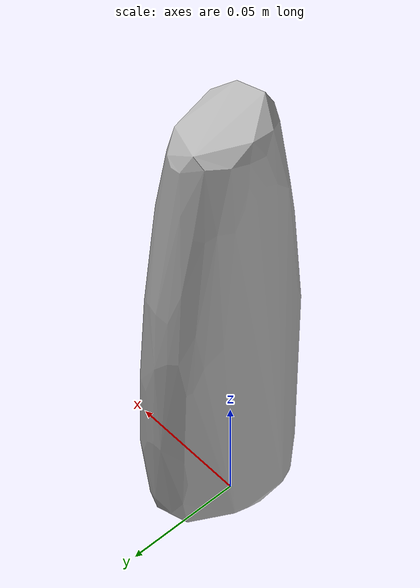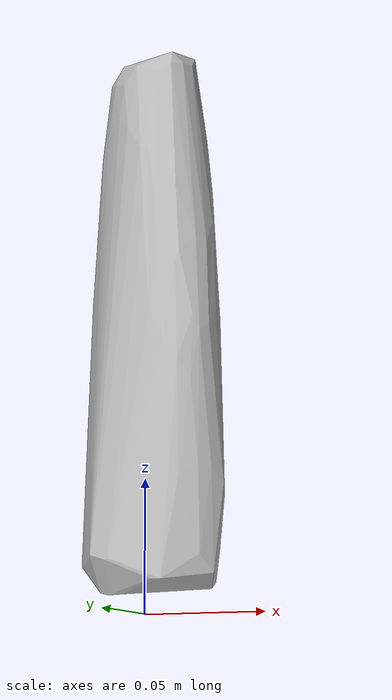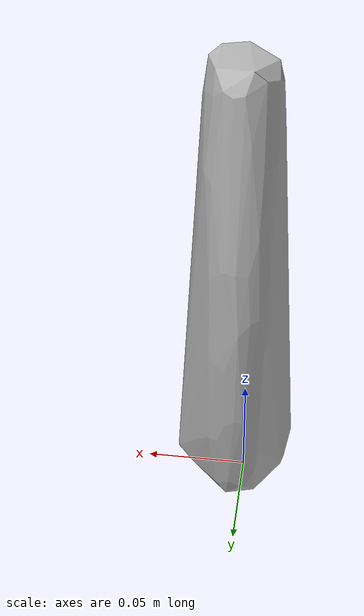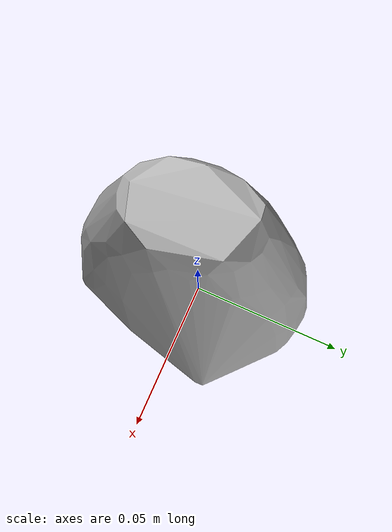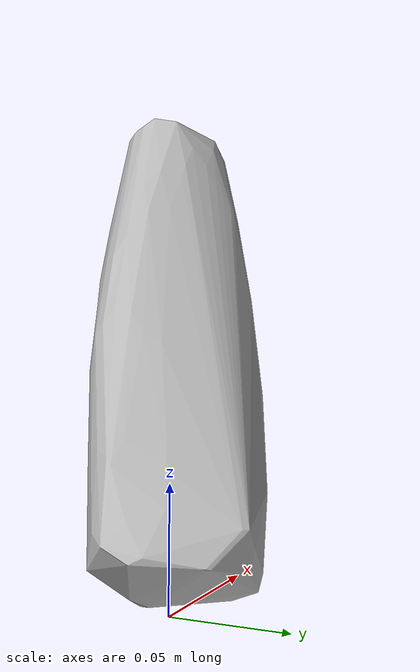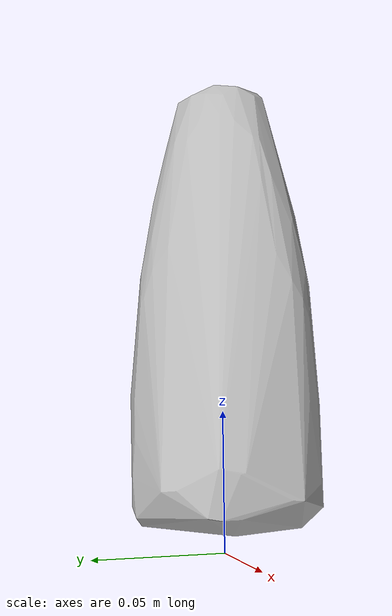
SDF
<?xml version='1.0'?>
<sdf version="1.4">
  <model name="vo5_split_ends_anti_breakage_shampoo">
    <static>false</static>
    <link name="link">
      <inertial>
        <pose>0.003864852044641946 0.0012038338090859019 0.09944814162906492 3.13746140475232 0.0006893231346864312 -3.096281716093838</pose>
        <mass>0.04491231205716598</mass>
        <inertia>
          <ixx>0.00014759666897685118</ixx>
          <ixy>3.906244675361201e-21</ixy>
          <ixz>-4.1788035618149406e-22</ixz>
          <iyy>0.00014052611115094715</iyy>
          <iyz>8.655064702018946e-21</iyz>
          <izz>1.812827620364375e-05</izz>
        </inertia>
      </inertial>
      <collision name="collision">
        <geometry>
          <mesh>
            <!-- Use a downsampled mesh for collisions -->
            <uri>model:///vo5_split_ends_anti_breakage_shampoo/vo5_split_ends_anti_breakage_shampoo_250_collision.obj</uri>
	        </mesh>
        </geometry>
        <surface>
      </surface>
      </collision>
      <visual name="visual">
        <geometry>
          <mesh>
            <uri>model:///vo5_split_ends_anti_breakage_shampoo/optimized_tsdf_texture_mapped_mesh.obj</uri>
	        </mesh>
        </geometry>
        <material>
          <script>
            <uri>model:///vo5_split_ends_anti_breakage_shampoo/vo5_split_ends_anti_breakage_shampoo.material</uri>
            <name>vo5_split_ends_anti_breakage_shampoo</name>
          </script>
        </material>
      </visual>
    </link>
  </model>
</sdf>
